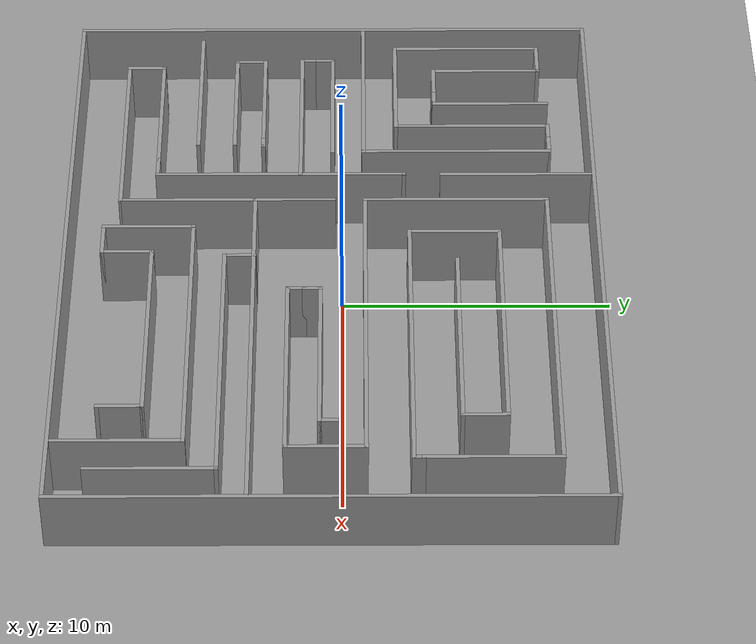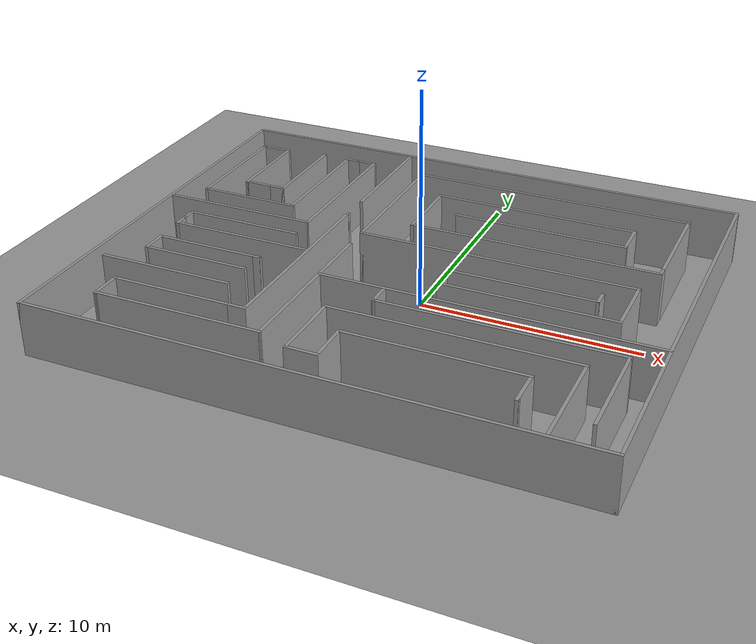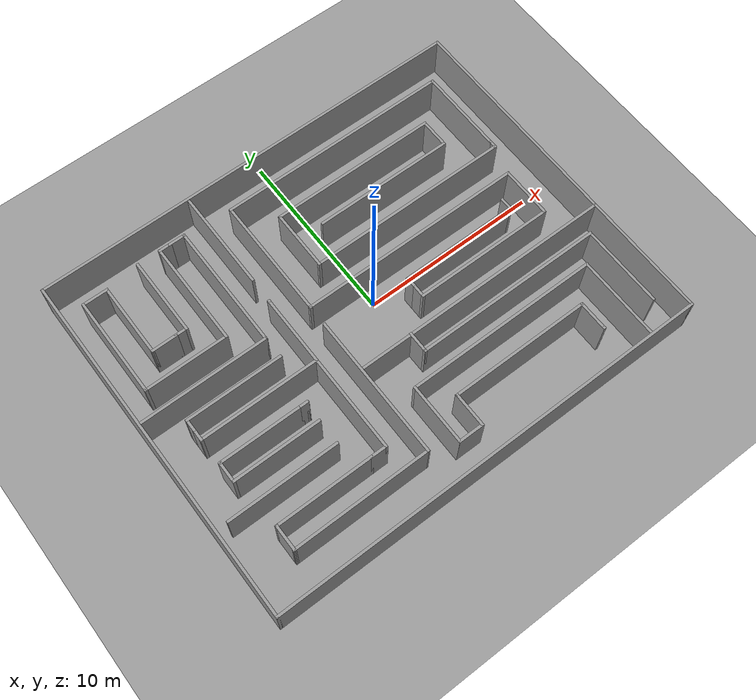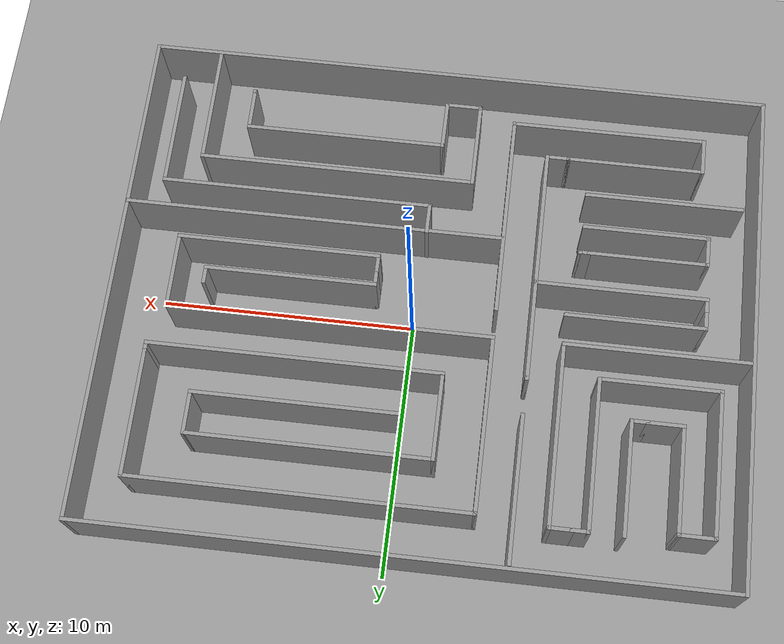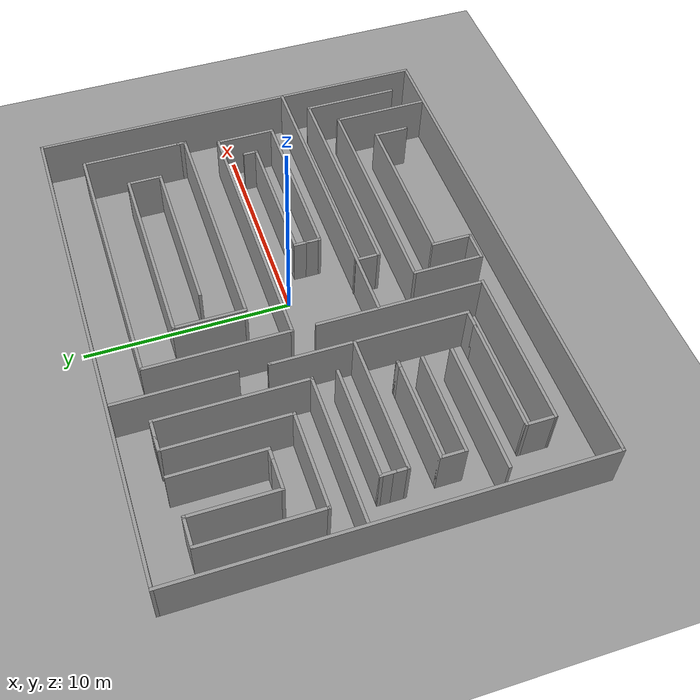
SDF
<sdf version="1.6">
 <world name="default">
  <light name="sun" type="directional">
   <pose>0 0 10 0 -0 0</pose>
   <diffuse>0.8 0.8 0.8 1</diffuse>
   <specular>0.2 0.2 0.2 1</specular>
   <attenuation>
    <range>1000</range>
    <constant>0.9</constant>
    <linear>0.01</linear>
    <quadratic>0.001</quadratic>
   </attenuation>
   <direction>0.5 0.1 -0.9</direction>
  </light>
  <scene><ambient>0.4 0.4 0.4 1</ambient><background>0.7 0.7 0.7 1</background><shadows>1</shadows></scene>
  <physics name="default_physics" default="0" type="ode">
   <max_step_size>0.01</max_step_size>
   <real_time_factor>1</real_time_factor>
   <real_time_update_rate>100</real_time_update_rate>
  </physics>
  <model name="ground_plane_0">
   <static>1</static>
   <link name="link">
    <collision name="collision">
     <geometry><plane><normal>0 0 1</normal><size>100 100</size></plane></geometry>
     <surface><friction><ode><mu>100</mu><mu2>50</mu2></ode></friction></surface>
    </collision>
    <visual name="visual">
     <cast_shadows>0</cast_shadows>
     <geometry><plane><normal>0 0 1</normal><size>100 100</size></plane></geometry>
     <material>
      <script><uri>file://media/materials/scripts/gazebo.material</uri><name>Gazebo/Grey</name></script>
     </material>
    </visual>
    <velocity_decay><linear>0</linear><angular>0</angular></velocity_decay>
   </link>
   <pose>0.497681 0 0 0 -0 0</pose>
  </model>
  <gravity>0 0 -9.8</gravity>
  <magnetic_field>6e-06 2.3e-05 -4.2e-05</magnetic_field>
  <atmosphere type="adiabatic"/>
  <spherical_coordinates>
   <surface_model>EARTH_WGS84</surface_model>
   <latitude_deg>0</latitude_deg>
   <longitude_deg>0</longitude_deg>
   <elevation>0</elevation>
   <heading_deg>0</heading_deg>
  </spherical_coordinates>
  <model name="EmptyWorld_0">
   <pose>-0.738305 -0.375801 0 0 -0 0</pose>
   <link name="Wall_12">
    <collision name="Wall_12_Collision">
     <geometry><box><size>25 0.15 2.5</size></box></geometry>
     <pose>0 0 1.25 0 -0 0</pose>
    </collision>
    <visual name="Wall_12_Visual">
     <pose>0 0 1.25 0 -0 0</pose>
     <geometry><box><size>25 0.15 2.5</size></box></geometry>
     <material>
      <script><uri>file://media/materials/scripts/gazebo.material</uri><name>Gazebo/Grey</name></script>
      <ambient>1 1 1 1</ambient>
     </material>
    </visual>
    <pose>0 -9.925 0 0 -0 0</pose>
   </link>
   <link name="Wall_13">
    <collision name="Wall_13_Collision">
     <geometry><box><size>20 0.15 2.5</size></box></geometry>
     <pose>0 0 1.25 0 -0 0</pose>
    </collision>
    <visual name="Wall_13_Visual">
     <pose>0 0 1.25 0 -0 0</pose>
     <geometry><box><size>20 0.15 2.5</size></box></geometry>
     <material>
      <script><uri>file://media/materials/scripts/gazebo.material</uri><name>Gazebo/Grey</name></script>
      <ambient>1 1 1 1</ambient>
     </material>
    </visual>
    <pose>12.425 0 0 0 -0 1.5708</pose>
   </link>
   <link name="Wall_14">
    <collision name="Wall_14_Collision">
     <geometry><box><size>25 0.15 2.5</size></box></geometry>
     <pose>0 0 1.25 0 -0 0</pose>
    </collision>
    <visual name="Wall_14_Visual">
     <pose>0 0 1.25 0 -0 0</pose>
     <geometry><box><size>25 0.15 2.5</size></box></geometry>
     <material>
      <script><uri>file://media/materials/scripts/gazebo.material</uri><name>Gazebo/Grey</name></script>
      <ambient>1 1 1 1</ambient>
     </material>
    </visual>
    <pose>0 9.925 0 0 -0 3.14159</pose>
   </link>
   <link name="Wall_15">
    <collision name="Wall_15_Collision">
     <geometry><box><size>20 0.15 2.5</size></box></geometry>
     <pose>0 0 1.25 0 -0 0</pose>
    </collision>
    <visual name="Wall_15_Visual">
     <pose>0 0 1.25 0 -0 0</pose>
     <geometry><box><size>20 0.15 2.5</size></box></geometry>
     <material>
      <script><uri>file://media/materials/scripts/gazebo.material</uri><name>Gazebo/Grey</name></script>
      <ambient>1 1 1 1</ambient>
     </material>
    </visual>
    <pose>-12.425 0 0 0 0 -1.5708</pose>
   </link>
   <static>1</static>
  </model>
  <model name="maze">
   <pose>-0.683926 -0.382654 0 0 -0 0</pose>
   <link name="Wall_10">
    <collision name="Wall_10_Collision">
     <geometry><box><size>0.75 0.15 2.5</size></box></geometry>
     <pose>0 0 1.25 0 -0 0</pose>
    </collision>
    <visual name="Wall_10_Visual">
     <pose>0 0 1.25 0 -0 0</pose>
     <geometry><box><size>0.75 0.15 2.5</size></box></geometry>
     <material>
      <script><uri>file://media/materials/scripts/gazebo.material</uri><name>Gazebo/Grey</name></script>
      <ambient>1 1 1 1</ambient>
     </material>
    </visual>
    <pose>2.20888 -1.31376 0 0 -0 1.5708</pose>
   </link>
   <link name="Wall_11">
    <collision name="Wall_11_Collision">
     <geometry><box><size>0.75 0.15 2.5</size></box></geometry>
     <pose>0 0 1.25 0 -0 0</pose>
    </collision>
    <visual name="Wall_11_Visual">
     <pose>0 0 1.25 0 -0 0</pose>
     <geometry><box><size>0.75 0.15 2.5</size></box></geometry>
     <material>
      <script><uri>file://media/materials/scripts/gazebo.material</uri><name>Gazebo/Grey</name></script>
      <ambient>1 1 1 1</ambient>
     </material>
    </visual>
    <pose>2.20888 -0.713761 0 0 -0 1.5708</pose>
   </link>
   <link name="Wall_12">
    <collision name="Wall_12_Collision">
     <geometry><box><size>6.75 0.15 2.5</size></box></geometry>
     <pose>0 0 1.25 0 -0 0</pose>
    </collision>
    <visual name="Wall_12_Visual">
     <pose>0 0 1.25 0 -0 0</pose>
     <geometry><box><size>6.75 0.15 2.5</size></box></geometry>
     <material>
      <script><uri>file://media/materials/scripts/gazebo.material</uri><name>Gazebo/Grey</name></script>
      <ambient>1 1 1 1</ambient>
     </material>
    </visual>
    <pose>5.50888 -0.413761 0 0 -0 0</pose>
   </link>
   <link name="Wall_13">
    <collision name="Wall_13_Collision">
     <geometry><box><size>0.75 0.15 2.5</size></box></geometry>
     <pose>0 0 1.25 0 -0 0</pose>
    </collision>
    <visual name="Wall_13_Visual">
     <pose>0 0 1.25 0 -0 0</pose>
     <geometry><box><size>0.75 0.15 2.5</size></box></geometry>
     <material>
      <script><uri>file://media/materials/scripts/gazebo.material</uri><name>Gazebo/Grey</name></script>
      <ambient>1 1 1 1</ambient>
     </material>
    </visual>
    <pose>8.80888 -0.113761 0 0 -0 1.5708</pose>
   </link>
   <link name="Wall_15">
    <collision name="Wall_15_Collision">
     <geometry><box><size>8.18201 0.15 2.5</size></box></geometry>
     <pose>0 0 1.25 0 -0 0</pose>
    </collision>
    <visual name="Wall_15_Visual">
     <pose>0 0 1.25 0 -0 0</pose>
     <geometry><box><size>8.18201 0.15 2.5</size></box></geometry>
     <material>
      <script><uri>file://media/materials/scripts/gazebo.material</uri><name>Gazebo/Grey</name></script>
      <ambient>1 1 1 1</ambient>
     </material>
    </visual>
    <pose>-2.54294 -3.95219 0 0 0 -1.56931</pose>
   </link>
   <link name="Wall_17">
    <collision name="Wall_17_Collision">
     <geometry><box><size>15 0.15 2.5</size></box></geometry>
     <pose>0 0 1.25 0 -0 0</pose>
    </collision>
    <visual name="Wall_17_Visual">
     <pose>0 0 1.25 0 -0 0</pose>
     <geometry><box><size>15 0.15 2.5</size></box></geometry>
     <material>
      <script><uri>file://media/materials/scripts/gazebo.material</uri><name>Gazebo/Grey</name></script>
      <ambient>1 1 1 1</ambient>
     </material>
    </visual>
    <pose>4.92011 -2.89232 0 0 -0 0</pose>
   </link>
   <link name="Wall_19">
    <collision name="Wall_19_Collision">
     <geometry><box><size>1.25 0.15 2.5</size></box></geometry>
     <pose>0 0 1.25 0 -0 0</pose>
    </collision>
    <visual name="Wall_19_Visual">
     <pose>0 0 1.25 0 -0 0</pose>
     <geometry><box><size>1.25 0.15 2.5</size></box></geometry>
     <material>
      <script><uri>file://media/materials/scripts/gazebo.material</uri><name>Gazebo/Grey</name></script>
      <ambient>1 1 1 1</ambient>
     </material>
    </visual>
    <pose>0.472645 -3.41906 0 0 0 -1.5708</pose>
   </link>
   <link name="Wall_20">
    <collision name="Wall_20_Collision">
     <geometry><box><size>10.75 0.15 2.5</size></box></geometry>
     <pose>0 0 1.25 0 -0 0</pose>
    </collision>
    <visual name="Wall_20_Visual">
     <pose>0 0 1.25 0 -0 0</pose>
     <geometry><box><size>10.75 0.15 2.5</size></box></geometry>
     <material>
      <script><uri>file://media/materials/scripts/gazebo.material</uri><name>Gazebo/Grey</name></script>
      <ambient>1 1 1 1</ambient>
     </material>
    </visual>
    <pose>5.77264 -3.96906 0 0 -0 0</pose>
   </link>
   <link name="Wall_21">
    <collision name="Wall_21_Collision">
     <geometry><box><size>4.75 0.15 2.5</size></box></geometry>
     <pose>0 0 1.25 0 -0 0</pose>
    </collision>
    <visual name="Wall_21_Visual">
     <pose>0 0 1.25 0 -0 0</pose>
     <geometry><box><size>4.75 0.15 2.5</size></box></geometry>
     <material>
      <script><uri>file://media/materials/scripts/gazebo.material</uri><name>Gazebo/Grey</name></script>
      <ambient>1 1 1 1</ambient>
     </material>
    </visual>
    <pose>11.0726 -6.26906 0 0 0 -1.5708</pose>
   </link>
   <link name="Wall_23">
    <collision name="Wall_23_Collision">
     <geometry><box><size>4.75 0.15 2.5</size></box></geometry>
     <pose>0 0 1.25 0 -0 0</pose>
    </collision>
    <visual name="Wall_23_Visual">
     <pose>0 0 1.25 0 -0 0</pose>
     <geometry><box><size>4.75 0.15 2.5</size></box></geometry>
     <material>
      <script><uri>file://media/materials/scripts/gazebo.material</uri><name>Gazebo/Grey</name></script>
      <ambient>1 1 1 1</ambient>
     </material>
    </visual>
    <pose>9.75761 -7.46812 0 0 0 -1.5708</pose>
   </link>
   <link name="Wall_25">
    <collision name="Wall_25_Collision">
     <geometry><box><size>11 0.15 2.5</size></box></geometry>
     <pose>0 0 1.25 0 -0 0</pose>
    </collision>
    <visual name="Wall_25_Visual">
     <pose>0 0 1.25 0 -0 0</pose>
     <geometry><box><size>11 0.15 2.5</size></box></geometry>
     <material>
      <script><uri>file://media/materials/scripts/gazebo.material</uri><name>Gazebo/Grey</name></script>
      <ambient>1 1 1 1</ambient>
     </material>
    </visual>
    <pose>4.33261 -5.16812 0 0 -0 3.14159</pose>
   </link>
   <link name="Wall_26">
    <collision name="Wall_26_Collision">
     <geometry><box><size>3.5 0.15 2.5</size></box></geometry>
     <pose>0 0 1.25 0 -0 0</pose>
    </collision>
    <visual name="Wall_26_Visual">
     <pose>0 0 1.25 0 -0 0</pose>
     <geometry><box><size>3.5 0.15 2.5</size></box></geometry>
     <material>
      <script><uri>file://media/materials/scripts/gazebo.material</uri><name>Gazebo/Grey</name></script>
      <ambient>1 1 1 1</ambient>
     </material>
    </visual>
    <pose>-1.09239 -6.84312 0 0 0 -1.5708</pose>
   </link>
   <link name="Wall_27">
    <collision name="Wall_27_Collision">
     <geometry><box><size>1.5 0.15 2.5</size></box></geometry>
     <pose>0 0 1.25 0 -0 0</pose>
    </collision>
    <visual name="Wall_27_Visual">
     <pose>0 0 1.25 0 -0 0</pose>
     <geometry><box><size>1.5 0.15 2.5</size></box></geometry>
     <material>
      <script><uri>file://media/materials/scripts/gazebo.material</uri><name>Gazebo/Grey</name></script>
      <ambient>1 1 1 1</ambient>
     </material>
    </visual>
    <pose>-0.417391 -8.51812 0 0 -0 0</pose>
   </link>
   <link name="Wall_28">
    <collision name="Wall_28_Collision">
     <geometry><box><size>2 0.15 2.5</size></box></geometry>
     <pose>0 0 1.25 0 -0 0</pose>
    </collision>
    <visual name="Wall_28_Visual">
     <pose>0 0 1.25 0 -0 0</pose>
     <geometry><box><size>2 0.15 2.5</size></box></geometry>
     <material>
      <script><uri>file://media/materials/scripts/gazebo.material</uri><name>Gazebo/Grey</name></script>
      <ambient>1 1 1 1</ambient>
     </material>
    </visual>
    <pose>0.257609 -7.59312 0 0 -0 1.5708</pose>
   </link>
   <link name="Wall_29">
    <collision name="Wall_29_Collision">
     <geometry><box><size>8 0.15 2.5</size></box></geometry>
     <pose>0 0 1.25 0 -0 0</pose>
    </collision>
    <visual name="Wall_29_Visual">
     <pose>0 0 1.25 0 -0 0</pose>
     <geometry><box><size>8 0.15 2.5</size></box></geometry>
     <material>
      <script><uri>file://media/materials/scripts/gazebo.material</uri><name>Gazebo/Grey</name></script>
      <ambient>1 1 1 1</ambient>
     </material>
    </visual>
    <pose>4.18261 -6.66812 0 0 -0 0</pose>
   </link>
   <link name="Wall_30">
    <collision name="Wall_30_Collision">
     <geometry><box><size>1.75 0.15 2.5</size></box></geometry>
     <pose>0 0 1.25 0 -0 0</pose>
    </collision>
    <visual name="Wall_30_Visual">
     <pose>0 0 1.25 0 -0 0</pose>
     <geometry><box><size>1.75 0.15 2.5</size></box></geometry>
     <material>
      <script><uri>file://media/materials/scripts/gazebo.material</uri><name>Gazebo/Grey</name></script>
      <ambient>1 1 1 1</ambient>
     </material>
    </visual>
    <pose>8.10761 -7.46812 0 0 0 -1.5708</pose>
   </link>
   <link name="Wall_31">
    <collision name="Wall_31_Collision">
     <geometry><box><size>0.16 0.15 2.5</size></box></geometry>
     <pose>0 0 1.25 0 -0 0</pose>
    </collision>
    <visual name="Wall_31_Visual">
     <pose>0 0 1.25 0 -0 0</pose>
     <geometry><box><size>0.16 0.15 2.5</size></box></geometry>
     <material>
      <script><uri>file://media/materials/scripts/gazebo.material</uri><name>Gazebo/Grey</name></script>
      <ambient>1 1 1 1</ambient>
     </material>
    </visual>
    <pose>8.11261 -8.26812 0 0 -0 0</pose>
   </link>
   <link name="Wall_33">
    <collision name="Wall_33_Collision">
     <geometry><box><size>7.77716 0.15 2.5</size></box></geometry>
     <pose>0 0 1.25 0 -0 0</pose>
    </collision>
    <visual name="Wall_33_Visual">
     <pose>0 0 1.25 0 -0 0</pose>
     <geometry><box><size>7.77716 0.15 2.5</size></box></geometry>
     <material>
      <script><uri>file://media/materials/scripts/gazebo.material</uri><name>Gazebo/Grey</name></script>
      <ambient>1 1 1 1</ambient>
     </material>
    </visual>
    <pose>-6.35054 -7.9751 0 0 0 -3.13978</pose>
   </link>
   <link name="Wall_34">
    <collision name="Wall_34_Collision">
     <geometry><box><size>1.5 0.15 2.5</size></box></geometry>
     <pose>0 0 1.25 0 -0 0</pose>
    </collision>
    <visual name="Wall_34_Visual">
     <pose>0 0 1.25 0 -0 0</pose>
     <geometry><box><size>1.5 0.15 2.5</size></box></geometry>
     <material>
      <script><uri>file://media/materials/scripts/gazebo.material</uri><name>Gazebo/Grey</name></script>
      <ambient>1 1 1 1</ambient>
     </material>
    </visual>
    <pose>-10.1641 -7.30701 0 0 -0 1.5708</pose>
   </link>
   <link name="Wall_35">
    <collision name="Wall_35_Collision">
     <geometry><box><size>5.5 0.15 2.5</size></box></geometry>
     <pose>0 0 1.25 0 -0 0</pose>
    </collision>
    <visual name="Wall_35_Visual">
     <pose>0 0 1.25 0 -0 0</pose>
     <geometry><box><size>5.5 0.15 2.5</size></box></geometry>
     <material>
      <script><uri>file://media/materials/scripts/gazebo.material</uri><name>Gazebo/Grey</name></script>
      <ambient>1 1 1 1</ambient>
     </material>
    </visual>
    <pose>-7.48912 -6.63201 0 0 -0 0</pose>
   </link>
   <link name="Wall_36">
    <collision name="Wall_36_Collision">
     <geometry><box><size>1 0.15 2.5</size></box></geometry>
     <pose>0 0 1.25 0 -0 0</pose>
    </collision>
    <visual name="Wall_36_Visual">
     <pose>0 0 1.25 0 -0 0</pose>
     <geometry><box><size>1 0.15 2.5</size></box></geometry>
     <material>
      <script><uri>file://media/materials/scripts/gazebo.material</uri><name>Gazebo/Grey</name></script>
      <ambient>1 1 1 1</ambient>
     </material>
    </visual>
    <pose>-4.38912 -6.63201 0 0 -0 0</pose>
   </link>
   <link name="Wall_37">
    <collision name="Wall_37_Collision">
     <geometry><box><size>9.5 0.15 2.5</size></box></geometry>
     <pose>0 0 1.25 0 -0 0</pose>
    </collision>
    <visual name="Wall_37_Visual">
     <pose>0 0 1.25 0 -0 0</pose>
     <geometry><box><size>9.5 0.15 2.5</size></box></geometry>
     <material>
      <script><uri>file://media/materials/scripts/gazebo.material</uri><name>Gazebo/Grey</name></script>
      <ambient>1 1 1 1</ambient>
     </material>
    </visual>
    <pose>-3.96412 -1.95701 0 0 -0 1.5708</pose>
   </link>
   <link name="Wall_38">
    <collision name="Wall_38_Collision">
     <geometry><box><size>0.16 0.15 2.5</size></box></geometry>
     <pose>0 0 1.25 0 -0 0</pose>
    </collision>
    <visual name="Wall_38_Visual">
     <pose>0 0 1.25 0 -0 0</pose>
     <geometry><box><size>0.16 0.15 2.5</size></box></geometry>
     <material>
      <script><uri>file://media/materials/scripts/gazebo.material</uri><name>Gazebo/Grey</name></script>
      <ambient>1 1 1 1</ambient>
     </material>
    </visual>
    <pose>-3.95912 2.71799 0 0 -0 0</pose>
   </link>
   <link name="Wall_40">
    <collision name="Wall_40_Collision">
     <geometry><box><size>6.25 0.15 2.5</size></box></geometry>
     <pose>0 0 1.25 0 -0 0</pose>
    </collision>
    <visual name="Wall_40_Visual">
     <pose>0 0 1.25 0 -0 0</pose>
     <geometry><box><size>6.25 0.15 2.5</size></box></geometry>
     <material>
      <script><uri>file://media/materials/scripts/gazebo.material</uri><name>Gazebo/Grey</name></script>
      <ambient>1 1 1 1</ambient>
     </material>
    </visual>
    <pose>-8.72715 -5.14137 0 0 -0 0</pose>
   </link>
   <link name="Wall_42">
    <collision name="Wall_42_Collision">
     <geometry><box><size>5 0.15 2.5</size></box></geometry>
     <pose>0 0 1.25 0 -0 0</pose>
    </collision>
    <visual name="Wall_42_Visual">
     <pose>0 0 1.25 0 -0 0</pose>
     <geometry><box><size>5 0.15 2.5</size></box></geometry>
     <material>
      <script><uri>file://media/materials/scripts/gazebo.material</uri><name>Gazebo/Grey</name></script>
      <ambient>1 1 1 1</ambient>
     </material>
    </visual>
    <pose>-8.10286 -3.75031 0 0 -0 3.14159</pose>
   </link>
   <link name="Wall_43">
    <collision name="Wall_43_Collision">
     <geometry><box><size>1.25 0.15 2.5</size></box></geometry>
     <pose>0 0 1.25 0 -0 0</pose>
    </collision>
    <visual name="Wall_43_Visual">
     <pose>0 0 1.25 0 -0 0</pose>
     <geometry><box><size>1.25 0.15 2.5</size></box></geometry>
     <material>
      <script><uri>file://media/materials/scripts/gazebo.material</uri><name>Gazebo/Grey</name></script>
      <ambient>1 1 1 1</ambient>
     </material>
    </visual>
    <pose>-10.5279 -3.20031 0 0 -0 1.5708</pose>
   </link>
   <link name="Wall_44">
    <collision name="Wall_44_Collision">
     <geometry><box><size>4.75 0.15 2.5</size></box></geometry>
     <pose>0 0 1.25 0 -0 0</pose>
    </collision>
    <visual name="Wall_44_Visual">
     <pose>0 0 1.25 0 -0 0</pose>
     <geometry><box><size>4.75 0.15 2.5</size></box></geometry>
     <material>
      <script><uri>file://media/materials/scripts/gazebo.material</uri><name>Gazebo/Grey</name></script>
      <ambient>1 1 1 1</ambient>
     </material>
    </visual>
    <pose>-8.22786 -2.65031 0 0 -0 0</pose>
   </link>
   <link name="Wall_46">
    <collision name="Wall_46_Collision">
     <geometry><box><size>0.5 0.15 2.5</size></box></geometry>
     <pose>0 0 1.25 0 -0 0</pose>
    </collision>
    <visual name="Wall_46_Visual">
     <pose>0 0 1.25 0 -0 0</pose>
     <geometry><box><size>0.5 0.15 2.5</size></box></geometry>
     <material>
      <script><uri>file://media/materials/scripts/gazebo.material</uri><name>Gazebo/Grey</name></script>
      <ambient>1 1 1 1</ambient>
     </material>
    </visual>
    <pose>-5.75286 -2.65031 0 0 -0 0</pose>
   </link>
   <link name="Wall_47">
    <collision name="Wall_47_Collision">
     <geometry><box><size>0.16 0.15 2.5</size></box></geometry>
     <pose>0 0 1.25 0 -0 0</pose>
    </collision>
    <visual name="Wall_47_Visual">
     <pose>0 0 1.25 0 -0 0</pose>
     <geometry><box><size>0.16 0.15 2.5</size></box></geometry>
     <material>
      <script><uri>file://media/materials/scripts/gazebo.material</uri><name>Gazebo/Grey</name></script>
      <ambient>1 1 1 1</ambient>
     </material>
    </visual>
    <pose>-5.57286 -2.65031 0 0 -0 0</pose>
   </link>
   <link name="Wall_51">
    <collision name="Wall_51_Collision">
     <geometry><box><size>6.75 0.15 2.5</size></box></geometry>
     <pose>0 0 1.25 0 -0 0</pose>
    </collision>
    <visual name="Wall_51_Visual">
     <pose>0 0 1.25 0 -0 0</pose>
     <geometry><box><size>6.75 0.15 2.5</size></box></geometry>
     <material>
      <script><uri>file://media/materials/scripts/gazebo.material</uri><name>Gazebo/Grey</name></script>
      <ambient>1 1 1 1</ambient>
     </material>
    </visual>
    <pose>-7.28343 -1.20106 0 0 -0 0</pose>
   </link>
   <link name="Wall_53">
    <collision name="Wall_53_Collision">
     <geometry><box><size>0.75 0.15 2.5</size></box></geometry>
     <pose>0 0 1.25 0 -0 0</pose>
    </collision>
    <visual name="Wall_53_Visual">
     <pose>0 0 1.25 0 -0 0</pose>
     <geometry><box><size>0.75 0.15 2.5</size></box></geometry>
     <material>
      <script><uri>file://media/materials/scripts/gazebo.material</uri><name>Gazebo/Grey</name></script>
      <ambient>1 1 1 1</ambient>
     </material>
    </visual>
    <pose>-10.5834 -0.901065 0 0 -0 1.5708</pose>
   </link>
   <link name="Wall_55">
    <collision name="Wall_55_Collision">
     <geometry><box><size>0.75 0.15 2.5</size></box></geometry>
     <pose>0 0 1.25 0 -0 0</pose>
    </collision>
    <visual name="Wall_55_Visual">
     <pose>0 0 1.25 0 -0 0</pose>
     <geometry><box><size>0.75 0.15 2.5</size></box></geometry>
     <material>
      <script><uri>file://media/materials/scripts/gazebo.material</uri><name>Gazebo/Grey</name></script>
      <ambient>1 1 1 1</ambient>
     </material>
    </visual>
    <pose>-10.5834 -0.301064 0 0 -0 1.5708</pose>
   </link>
   <link name="Wall_56">
    <collision name="Wall_56_Collision">
     <geometry><box><size>5.5 0.15 2.5</size></box></geometry>
     <pose>0 0 1.25 0 -0 0</pose>
    </collision>
    <visual name="Wall_56_Visual">
     <pose>0 0 1.25 0 -0 0</pose>
     <geometry><box><size>5.5 0.15 2.5</size></box></geometry>
     <material>
      <script><uri>file://media/materials/scripts/gazebo.material</uri><name>Gazebo/Grey</name></script>
      <ambient>1 1 1 1</ambient>
     </material>
    </visual>
    <pose>-7.90842 -0.001064 0 0 -0 0</pose>
   </link>
   <link name="Wall_58">
    <collision name="Wall_58_Collision">
     <geometry><box><size>7.25 0.15 2.5</size></box></geometry>
     <pose>0 0 1.25 0 -0 0</pose>
    </collision>
    <visual name="Wall_58_Visual">
     <pose>0 0 1.25 0 -0 0</pose>
     <geometry><box><size>7.25 0.15 2.5</size></box></geometry>
     <material>
      <script><uri>file://media/materials/scripts/gazebo.material</uri><name>Gazebo/Grey</name></script>
      <ambient>1 1 1 1</ambient>
     </material>
    </visual>
    <pose>-8.79511 1.19364 0 0 -0 0</pose>
   </link>
   <link name="Wall_60">
    <collision name="Wall_60_Collision">
     <geometry><box><size>7.25 0.15 2.5</size></box></geometry>
     <pose>0 0 1.25 0 -0 0</pose>
    </collision>
    <visual name="Wall_60_Visual">
     <pose>0 0 1.25 0 -0 0</pose>
     <geometry><box><size>7.25 0.15 2.5</size></box></geometry>
     <material>
      <script><uri>file://media/materials/scripts/gazebo.material</uri><name>Gazebo/Grey</name></script>
      <ambient>1 1 1 1</ambient>
     </material>
    </visual>
    <pose>-5.24511 4.74364 0 0 -0 1.5708</pose>
   </link>
   <link name="Wall_61">
    <collision name="Wall_61_Collision">
     <geometry><box><size>1 0.15 2.5</size></box></geometry>
     <pose>0 0 1.25 0 -0 0</pose>
    </collision>
    <visual name="Wall_61_Visual">
     <pose>0 0 1.25 0 -0 0</pose>
     <geometry><box><size>1 0.15 2.5</size></box></geometry>
     <material>
      <script><uri>file://media/materials/scripts/gazebo.material</uri><name>Gazebo/Grey</name></script>
      <ambient>1 1 1 1</ambient>
     </material>
    </visual>
    <pose>-5.67012 8.29364 0 0 -0 3.14159</pose>
   </link>
   <link name="Wall_63">
    <collision name="Wall_63_Collision">
     <geometry><box><size>0.75 0.15 2.5</size></box></geometry>
     <pose>0 0 1.25 0 -0 0</pose>
    </collision>
    <visual name="Wall_63_Visual">
     <pose>0 0 1.25 0 -0 0</pose>
     <geometry><box><size>0.75 0.15 2.5</size></box></geometry>
     <material>
      <script><uri>file://media/materials/scripts/gazebo.material</uri><name>Gazebo/Grey</name></script>
      <ambient>1 1 1 1</ambient>
     </material>
    </visual>
    <pose>-6.39511 8.29364 0 0 -0 3.14159</pose>
   </link>
   <link name="Wall_64">
    <collision name="Wall_64_Collision">
     <geometry><box><size>6 0.15 2.5</size></box></geometry>
     <pose>0 0 1.25 0 -0 0</pose>
    </collision>
    <visual name="Wall_64_Visual">
     <pose>0 0 1.25 0 -0 0</pose>
     <geometry><box><size>6 0.15 2.5</size></box></geometry>
     <material>
      <script><uri>file://media/materials/scripts/gazebo.material</uri><name>Gazebo/Grey</name></script>
      <ambient>1 1 1 1</ambient>
     </material>
    </visual>
    <pose>-6.69512 5.36864 0 0 0 -1.5708</pose>
   </link>
   <link name="Wall_66">
    <collision name="Wall_66_Collision">
     <geometry><box><size>4.75 0.15 2.5</size></box></geometry>
     <pose>0 0 1.25 0 -0 0</pose>
    </collision>
    <visual name="Wall_66_Visual">
     <pose>0 0 1.25 0 -0 0</pose>
     <geometry><box><size>4.75 0.15 2.5</size></box></geometry>
     <material>
      <script><uri>file://media/materials/scripts/gazebo.material</uri><name>Gazebo/Grey</name></script>
      <ambient>1 1 1 1</ambient>
     </material>
    </visual>
    <pose>-8.99511 2.44364 0 0 -0 3.14159</pose>
   </link>
   <link name="Wall_67">
    <collision name="Wall_67_Collision">
     <geometry><box><size>5.75 0.15 2.5</size></box></geometry>
     <pose>0 0 1.25 0 -0 0</pose>
    </collision>
    <visual name="Wall_67_Visual">
     <pose>0 0 1.25 0 -0 0</pose>
     <geometry><box><size>5.75 0.15 2.5</size></box></geometry>
     <material>
      <script><uri>file://media/materials/scripts/gazebo.material</uri><name>Gazebo/Grey</name></script>
      <ambient>1 1 1 1</ambient>
     </material>
    </visual>
    <pose>-11.2951 5.24364 0 0 -0 1.5708</pose>
   </link>
   <link name="Wall_68">
    <collision name="Wall_68_Collision">
     <geometry><box><size>1.5 0.15 2.5</size></box></geometry>
     <pose>0 0 1.25 0 -0 0</pose>
    </collision>
    <visual name="Wall_68_Visual">
     <pose>0 0 1.25 0 -0 0</pose>
     <geometry><box><size>1.5 0.15 2.5</size></box></geometry>
     <material>
      <script><uri>file://media/materials/scripts/gazebo.material</uri><name>Gazebo/Grey</name></script>
      <ambient>1 1 1 1</ambient>
     </material>
    </visual>
    <pose>-10.6201 8.04364 0 0 -0 0</pose>
   </link>
   <link name="Wall_69">
    <collision name="Wall_69_Collision">
     <geometry><box><size>4.25 0.15 2.5</size></box></geometry>
     <pose>0 0 1.25 0 -0 0</pose>
    </collision>
    <visual name="Wall_69_Visual">
     <pose>0 0 1.25 0 -0 0</pose>
     <geometry><box><size>4.25 0.15 2.5</size></box></geometry>
     <material>
      <script><uri>file://media/materials/scripts/gazebo.material</uri><name>Gazebo/Grey</name></script>
      <ambient>1 1 1 1</ambient>
     </material>
    </visual>
    <pose>-9.94511 5.99364 0 0 0 -1.5708</pose>
   </link>
   <link name="Wall_7">
    <collision name="Wall_7_Collision">
     <geometry><box><size>12.75 0.15 2.5</size></box></geometry>
     <pose>0 0 1.25 0 -0 0</pose>
    </collision>
    <visual name="Wall_7_Visual">
     <pose>0 0 1.25 0 -0 0</pose>
     <geometry><box><size>12.75 0.15 2.5</size></box></geometry>
     <material>
      <script><uri>file://media/materials/scripts/gazebo.material</uri><name>Gazebo/Grey</name></script>
      <ambient>1 1 1 1</ambient>
     </material>
    </visual>
    <pose>3.75888 1.23624 0 0 -0 0</pose>
   </link>
   <link name="Wall_70">
    <collision name="Wall_70_Collision">
     <geometry><box><size>1.5 0.15 2.5</size></box></geometry>
     <pose>0 0 1.25 0 -0 0</pose>
    </collision>
    <visual name="Wall_70_Visual">
     <pose>0 0 1.25 0 -0 0</pose>
     <geometry><box><size>1.5 0.15 2.5</size></box></geometry>
     <material>
      <script><uri>file://media/materials/scripts/gazebo.material</uri><name>Gazebo/Grey</name></script>
      <ambient>1 1 1 1</ambient>
     </material>
    </visual>
    <pose>-9.27012 3.94364 0 0 -0 0</pose>
   </link>
   <link name="Wall_72">
    <collision name="Wall_72_Collision">
     <geometry><box><size>0.75 0.15 2.5</size></box></geometry>
     <pose>0 0 1.25 0 -0 0</pose>
    </collision>
    <visual name="Wall_72_Visual">
     <pose>0 0 1.25 0 -0 0</pose>
     <geometry><box><size>0.75 0.15 2.5</size></box></geometry>
     <material>
      <script><uri>file://media/materials/scripts/gazebo.material</uri><name>Gazebo/Grey</name></script>
      <ambient>1 1 1 1</ambient>
     </material>
    </visual>
    <pose>-8.29511 3.94364 0 0 -0 0</pose>
   </link>
   <link name="Wall_73">
    <collision name="Wall_73_Collision">
     <geometry><box><size>4.5 0.15 2.5</size></box></geometry>
     <pose>0 0 1.25 0 -0 0</pose>
    </collision>
    <visual name="Wall_73_Visual">
     <pose>0 0 1.25 0 -0 0</pose>
     <geometry><box><size>4.5 0.15 2.5</size></box></geometry>
     <material>
      <script><uri>file://media/materials/scripts/gazebo.material</uri><name>Gazebo/Grey</name></script>
      <ambient>1 1 1 1</ambient>
     </material>
    </visual>
    <pose>-7.99511 6.11864 0 0 -0 1.5708</pose>
   </link>
   <link name="Wall_77">
    <collision name="Wall_77_Collision">
     <geometry><box><size>5.75 0.15 2.5</size></box></geometry>
     <pose>0 0 1.25 0 -0 0</pose>
    </collision>
    <visual name="Wall_77_Visual">
     <pose>0 0 1.25 0 -0 0</pose>
     <geometry><box><size>5.75 0.15 2.5</size></box></geometry>
     <material>
      <script><uri>file://media/materials/scripts/gazebo.material</uri><name>Gazebo/Grey</name></script>
      <ambient>1 1 1 1</ambient>
     </material>
    </visual>
    <pose>-3.93661 6.96812 0 0 -0 1.5708</pose>
   </link>
   <link name="Wall_79">
    <collision name="Wall_79_Collision">
     <geometry><box><size>7 0.15 2.5</size></box></geometry>
     <pose>0 0 1.25 0 -0 0</pose>
    </collision>
    <visual name="Wall_79_Visual">
     <pose>0 0 1.25 0 -0 0</pose>
     <geometry><box><size>7 0.15 2.5</size></box></geometry>
     <material>
      <script><uri>file://media/materials/scripts/gazebo.material</uri><name>Gazebo/Grey</name></script>
      <ambient>1 1 1 1</ambient>
     </material>
    </visual>
    <pose>-2.54112 4.66124 0 0 -0 1.5708</pose>
   </link>
   <link name="Wall_8">
    <collision name="Wall_8_Collision">
     <geometry><box><size>3 0.15 2.5</size></box></geometry>
     <pose>0 0 1.25 0 -0 0</pose>
    </collision>
    <visual name="Wall_8_Visual">
     <pose>0 0 1.25 0 -0 0</pose>
     <geometry><box><size>3 0.15 2.5</size></box></geometry>
     <material>
      <script><uri>file://media/materials/scripts/gazebo.material</uri><name>Gazebo/Grey</name></script>
      <ambient>1 1 1 1</ambient>
     </material>
    </visual>
    <pose>10.0589 -0.188761 0 0 0 -1.5708</pose>
   </link>
   <link name="Wall_80">
    <collision name="Wall_80_Collision">
     <geometry><box><size>13.25 0.15 2.5</size></box></geometry>
     <pose>0 0 1.25 0 -0 0</pose>
    </collision>
    <visual name="Wall_80_Visual">
     <pose>0 0 1.25 0 -0 0</pose>
     <geometry><box><size>13.25 0.15 2.5</size></box></geometry>
     <material>
      <script><uri>file://media/materials/scripts/gazebo.material</uri><name>Gazebo/Grey</name></script>
      <ambient>1 1 1 1</ambient>
     </material>
    </visual>
    <pose>4.00888 8.08624 0 0 -0 0</pose>
   </link>
   <link name="Wall_81">
    <collision name="Wall_81_Collision">
     <geometry><box><size>5 0.15 2.5</size></box></geometry>
     <pose>0 0 1.25 0 -0 0</pose>
    </collision>
    <visual name="Wall_81_Visual">
     <pose>0 0 1.25 0 -0 0</pose>
     <geometry><box><size>5 0.15 2.5</size></box></geometry>
     <material>
      <script><uri>file://media/materials/scripts/gazebo.material</uri><name>Gazebo/Grey</name></script>
      <ambient>1 1 1 1</ambient>
     </material>
    </visual>
    <pose>10.5589 5.66124 0 0 0 -1.5708</pose>
   </link>
   <link name="Wall_82">
    <collision name="Wall_82_Collision">
     <geometry><box><size>0.5 0.15 2.5</size></box></geometry>
     <pose>0 0 1.25 0 -0 0</pose>
    </collision>
    <visual name="Wall_82_Visual">
     <pose>0 0 1.25 0 -0 0</pose>
     <geometry><box><size>0.5 0.15 2.5</size></box></geometry>
     <material>
      <script><uri>file://media/materials/scripts/gazebo.material</uri><name>Gazebo/Grey</name></script>
      <ambient>1 1 1 1</ambient>
     </material>
    </visual>
    <pose>10.5589 3.06124 0 0 0 -1.5708</pose>
   </link>
   <link name="Wall_83">
    <collision name="Wall_83_Collision">
     <geometry><box><size>11.5 0.15 2.5</size></box></geometry>
     <pose>0 0 1.25 0 -0 0</pose>
    </collision>
    <visual name="Wall_83_Visual">
     <pose>0 0 1.25 0 -0 0</pose>
     <geometry><box><size>11.5 0.15 2.5</size></box></geometry>
     <material>
      <script><uri>file://media/materials/scripts/gazebo.material</uri><name>Gazebo/Grey</name></script>
      <ambient>1 1 1 1</ambient>
     </material>
    </visual>
    <pose>4.88388 2.88624 0 0 -0 3.14159</pose>
   </link>
   <link name="Wall_84">
    <collision name="Wall_84_Collision">
     <geometry><box><size>3.5 0.15 2.5</size></box></geometry>
     <pose>0 0 1.25 0 -0 0</pose>
    </collision>
    <visual name="Wall_84_Visual">
     <pose>0 0 1.25 0 -0 0</pose>
     <geometry><box><size>3.5 0.15 2.5</size></box></geometry>
     <material>
      <script><uri>file://media/materials/scripts/gazebo.material</uri><name>Gazebo/Grey</name></script>
      <ambient>1 1 1 1</ambient>
     </material>
    </visual>
    <pose>-0.791116 4.56124 0 0 -0 1.5708</pose>
   </link>
   <link name="Wall_85">
    <collision name="Wall_85_Collision">
     <geometry><box><size>9.5 0.15 2.5</size></box></geometry>
     <pose>0 0 1.25 0 -0 0</pose>
    </collision>
    <visual name="Wall_85_Visual">
     <pose>0 0 1.25 0 -0 0</pose>
     <geometry><box><size>9.5 0.15 2.5</size></box></geometry>
     <material>
      <script><uri>file://media/materials/scripts/gazebo.material</uri><name>Gazebo/Grey</name></script>
      <ambient>1 1 1 1</ambient>
     </material>
    </visual>
    <pose>3.88388 6.23624 0 0 -0 0</pose>
   </link>
   <link name="Wall_86">
    <collision name="Wall_86_Collision">
     <geometry><box><size>1.75 0.15 2.5</size></box></geometry>
     <pose>0 0 1.25 0 -0 0</pose>
    </collision>
    <visual name="Wall_86_Visual">
     <pose>0 0 1.25 0 -0 0</pose>
     <geometry><box><size>1.75 0.15 2.5</size></box></geometry>
     <material>
      <script><uri>file://media/materials/scripts/gazebo.material</uri><name>Gazebo/Grey</name></script>
      <ambient>1 1 1 1</ambient>
     </material>
    </visual>
    <pose>8.55888 5.43624 0 0 0 -1.5708</pose>
   </link>
   <link name="Wall_87">
    <collision name="Wall_87_Collision">
     <geometry><box><size>8 0.15 2.5</size></box></geometry>
     <pose>0 0 1.25 0 -0 0</pose>
    </collision>
    <visual name="Wall_87_Visual">
     <pose>0 0 1.25 0 -0 0</pose>
     <geometry><box><size>8 0.15 2.5</size></box></geometry>
     <material>
      <script><uri>file://media/materials/scripts/gazebo.material</uri><name>Gazebo/Grey</name></script>
      <ambient>1 1 1 1</ambient>
     </material>
    </visual>
    <pose>4.63388 4.63624 0 0 -0 3.14159</pose>
   </link>
   <link name="Wall_9">
    <collision name="Wall_9_Collision">
     <geometry><box><size>8 0.15 2.5</size></box></geometry>
     <pose>0 0 1.25 0 -0 0</pose>
    </collision>
    <visual name="Wall_9_Visual">
     <pose>0 0 1.25 0 -0 0</pose>
     <geometry><box><size>8 0.15 2.5</size></box></geometry>
     <material>
      <script><uri>file://media/materials/scripts/gazebo.material</uri><name>Gazebo/Grey</name></script>
      <ambient>1 1 1 1</ambient>
     </material>
    </visual>
    <pose>6.13388 -1.61376 0 0 -0 3.14159</pose>
   </link>
   <static>1</static>
  </model>
 </world>
</sdf>
